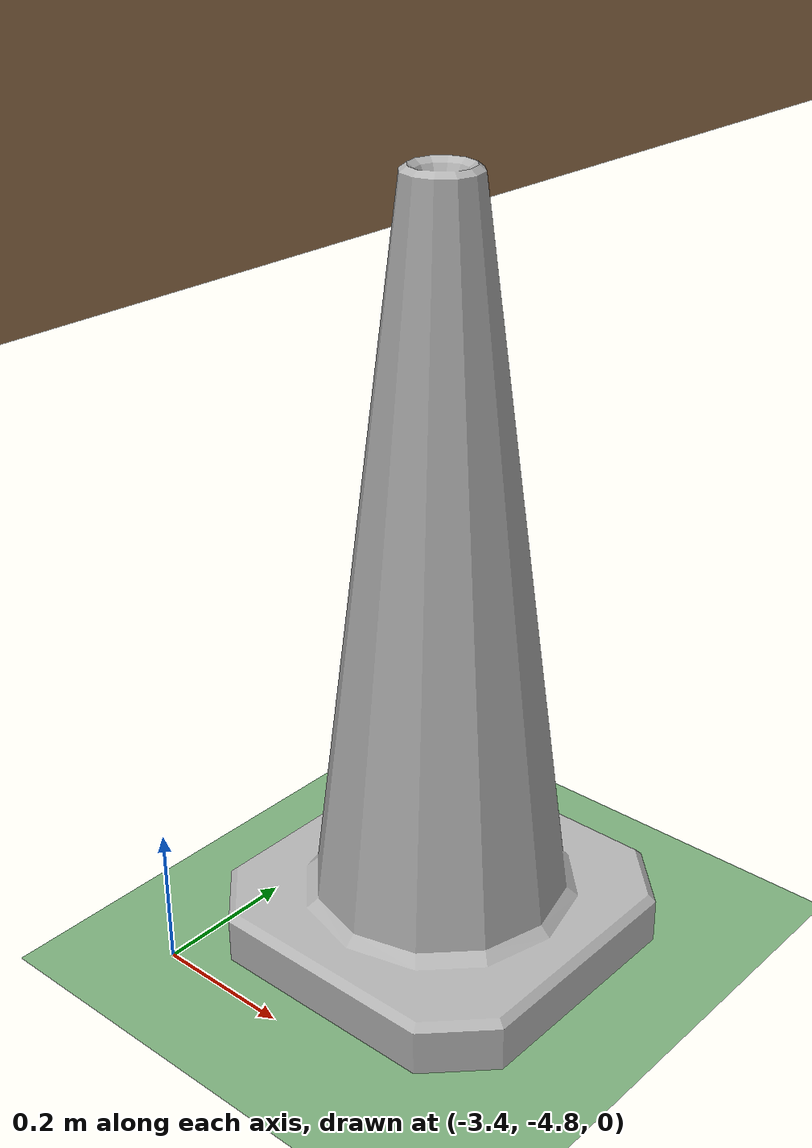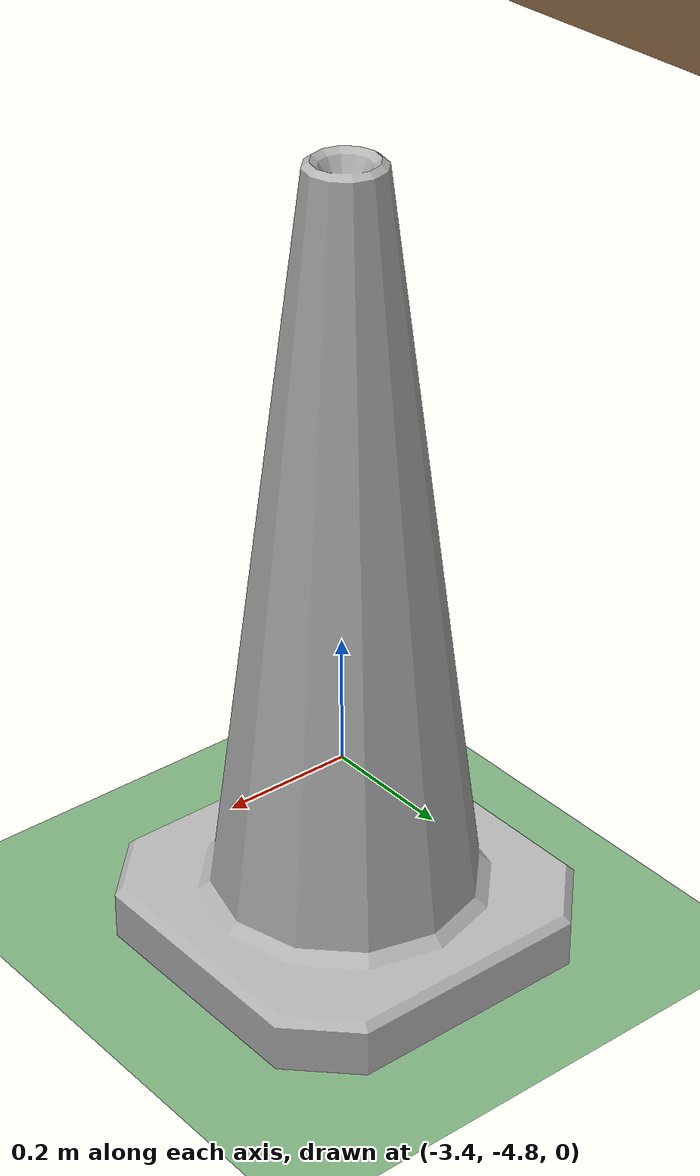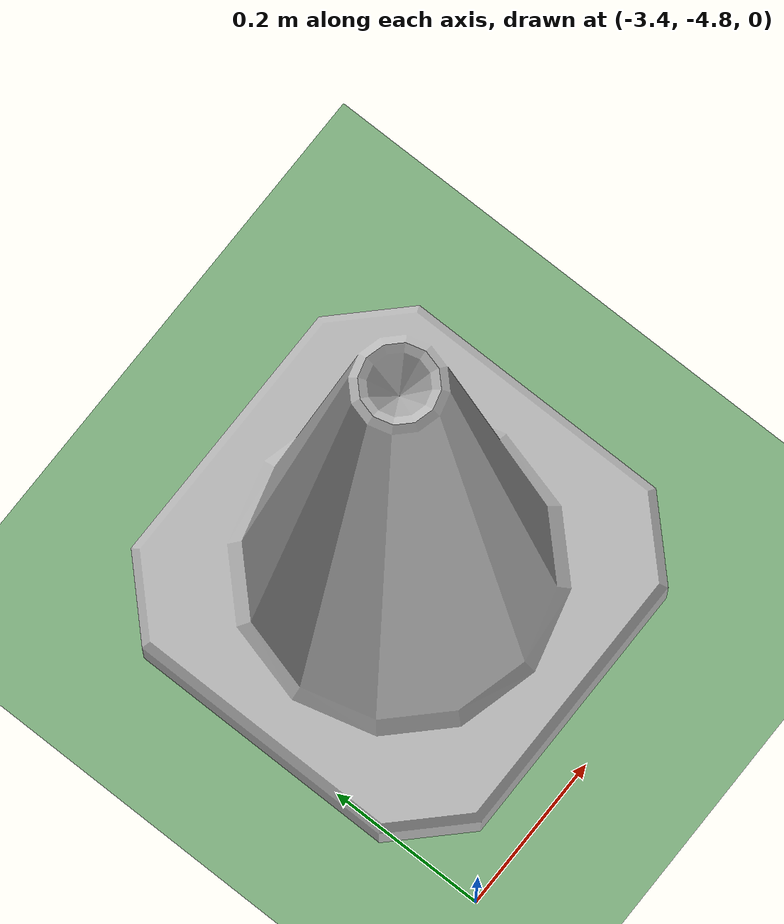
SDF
<?xml version="1.0"?>
<sdf version="1.8">

  <world name="empty_world">

    <physics name="1ms" type="ode">
      <max_step_size>0.003</max_step_size>
      <real_time_update_rate>1000.0</real_time_update_rate>
      <real_time_factor>1.0</real_time_factor>
    </physics>
    <plugin name='gz::sim::systems::Physics' filename='gz-sim-physics-system'/>
    <plugin name='gz::sim::systems::UserCommands' filename='gz-sim-user-commands-system'/>
    <plugin name='gz::sim::systems::SceneBroadcaster' filename='gz-sim-scene-broadcaster-system'/>
    <plugin name='gz::sim::systems::Contact' filename='gz-sim-contact-system'/>
    <gravity>0 0 -9.8</gravity>
    <magnetic_field>6e-06 2.3e-05 -4.2e-05</magnetic_field>
    <atmosphere type='adiabatic'/>
    <scene>
      <ambient>0.4 0.4 0.4 1</ambient>
      <background>0.7 0.7 0.7 1</background>
      <shadows>true</shadows>
    </scene>

    <light type="directional" name="sun">
    <cast_shadows>true</cast_shadows>
    <pose>0 0 10 0 0 0</pose>
    <diffuse>0.8 0.8 0.8 1</diffuse>
    <specular>0.2 0.2 0.2 1</specular>
    <attenuation>
        <range>1000</range>
        <constant>0.9</constant>
        <linear>0.01</linear>
        <quadratic>0.001</quadratic>
    </attenuation>
    <direction>-0.5 0.1 -0.9</direction>
    </light>
    <model name='ground_plane'>
      <static>true</static>
      <link name='link'>
        <collision name='collision'>
          <geometry>
            <plane>
              <normal>0 0 1</normal>
              <size>100 100</size>
            </plane>
          </geometry>
          <surface>
            <friction>
              <ode/>
            </friction>
            <bounce/>
            <contact/>
          </surface>
        </collision>
        <visual name='visual'>
          <geometry>
            <plane>
              <normal>0 0 1</normal>
              <size>100 100</size>
            </plane>
          </geometry>
          <material>
              <ambient>0.5 0.6 0.45 1</ambient>
              <diffuse>0.5 0.7 0.5 1</diffuse>
              <specular>0.2 0.2 0.2 1</specular>
          </material>
        </visual>
        <pose>0 0 0 0 -0 0</pose>
        <inertial>
          <pose>0 0 0 0 -0 0</pose>
          <mass>1</mass>
          <inertia>
            <ixx>1</ixx>
            <ixy>0</ixy>
            <ixz>0</ixz>
            <iyy>1</iyy>
            <iyz>0</iyz>
            <izz>1</izz>
          </inertia>
        </inertial>
        <enable_wind>false</enable_wind>
      </link>
      <pose>0 0 0 0 -0 0</pose>
      <self_collide>false</self_collide>
    </model>
    <model name='construction_cone'>
      <include>
            <uri>model://construction_cone</uri>
      </include>
      <pose>-3.16254 -4.5019 -0.000817 0 -0 0</pose>
      <static>true</static>
    </model>
    <model name="neo_workshop_walls">
    <static>true</static>
    <link name="wall_link">
      <pose>3 -4.04 0 0 0 0</pose>
      <visual name="wall_visual">
        <pose>0 0 0 0 -0 0</pose>
        <geometry>
          <mesh>
            <scale>1 1 1</scale>
            <uri>model://neo_workshop_walls/meshes/walls.dae</uri>
          </mesh>
        </geometry>
        <material>
            <ambient>0.55 0.4 0.25 1</ambient>
            <diffuse>0.6 0.45 0.3 1</diffuse>
            <specular>0.2 0.2 0.2 1</specular>
        </material>
      </visual>
      <collision name="wall_collision">
        <geometry>
          <mesh>
          <scale>1 1 1</scale>
            <uri>model://neo_workshop_walls/meshes/walls.dae</uri>
          </mesh>
        </geometry>
        <pose>0 0 0 0 0 0</pose>
        <max_contacts>10</max_contacts>
        <surface>
          <contact>
            <ode/>
          </contact>
          <bounce/>
          <friction>
            <torsional>
              <ode/>
            </torsional>
            <ode/>
          </friction>
        </surface>
      </collision>
      <self_collide>false</self_collide>
      <enable_wind>false</enable_wind>
      <kinematic>false</kinematic>
      <inertial>
        <pose>0 0 0 0 0 0</pose>
        <mass>1</mass>
        <inertia>
          <ixx>1</ixx>
          <ixy>0</ixy>
          <ixz>0</ixz>
          <iyy>1</iyy>
          <iyz>0</iyz>
          <izz>1</izz>
        </inertia>
      </inertial>
    </link>
  </model>
  </world>

</sdf>

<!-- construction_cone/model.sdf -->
<sdf version="1.5">
  <model name="Construction Cone">
    <link name="link">
      <collision name="collision">
        <geometry>
          <mesh>
            <scale>10 10 10</scale>
            <uri>file://isr-testbed/construction_cone/meshes/construction_cone.dae</uri>
          </mesh>
        </geometry>
      </collision>
      <visual name="visual">
        <geometry>
          <mesh>
            <scale>10 10 10</scale>
            <uri>file://isr-testbed/construction_cone/meshes/construction_cone.dae</uri>
          </mesh>
        </geometry>
      </visual>
    </link>
  </model>
</sdf>
